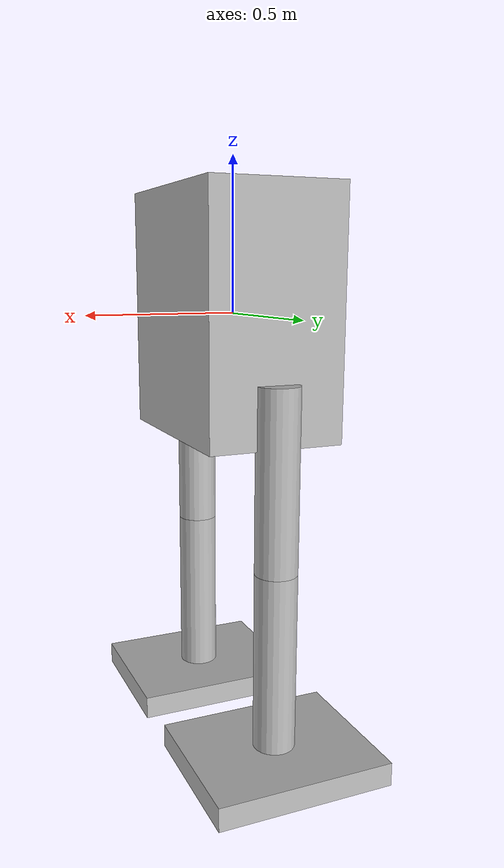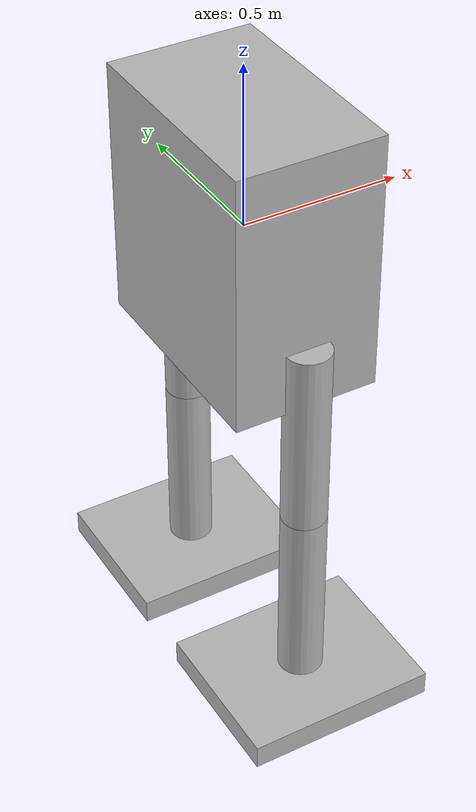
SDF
<sdf version='1.7'>
  <model name='bipedal_robot'>
    <link name='dummy'>
      <inertial>
        <pose>0 0 0 0 -0 0</pose>
        <mass>1.1</mass>
        <inertia>
          <ixx>0.1</ixx>
          <ixy>0</ixy>
          <ixz>0</ixz>
          <iyy>0.1</iyy>
          <iyz>0</iyz>
          <izz>0.1</izz>
        </inertia>
      </inertial>
      <collision name='dummy_fixed_joint_lump__base_link_collision'>
        <pose>0 0 0 0 -0 0</pose>
        <geometry>
          <box>
            <size>0.3 0.7 0.8</size>
          </box>
        </geometry>
        <surface>
          <contact>
            <ode>
              <max_vel>20</max_vel>
              <min_depth>0.01</min_depth>
            </ode>
          </contact>
          <friction>
            <ode>
              <mu>10000</mu>
              <mu2>10000</mu2>
            </ode>
          </friction>
        </surface>
      </collision>
      <visual name='dummy_fixed_joint_lump__base_link_visual'>
        <pose>0 0 0 0 -0 0</pose>
        <geometry>
          <box>
            <size>0.45 0.7 0.8</size>
          </box>
        </geometry>
      </visual>
    </link>
    <joint name='left_hip_joint1' type='revolute'>
      <pose relative_to='dummy'>0 0.35 -0.2 0 -0 0</pose>
      <parent>dummy</parent>
      <child>left_hip_link</child>
      <axis>
        <xyz>0 1 0</xyz>
        <limit>
          <lower>-1.57</lower>
          <upper>0.52</upper>
          <effort>50</effort>
          <velocity>10</velocity>
        </limit>
        <dynamics>
          <damping>0.3</damping>
          <friction>0.07</friction>
          <spring_reference>0</spring_reference>
          <spring_stiffness>0</spring_stiffness>
        </dynamics>
      </axis>
    </joint>
    <link name='left_hip_link'>
      <pose relative_to='left_hip_joint1'>0 0 0 0 -0 0</pose>
      <inertial>
        <pose>0 0 0 0 -0 0</pose>
        <mass>0.01</mass>
        <inertia>
          <ixx>0.1</ixx>
          <ixy>0</ixy>
          <ixz>0</ixz>
          <iyy>0.1</iyy>
          <iyz>0</iyz>
          <izz>0.1</izz>
        </inertia>
      </inertial>
    </link>
    <joint name='left_hip_joint2' type='revolute'>
      <pose relative_to='left_hip_link'>0 0 0 0 -0 0</pose>
      <parent>left_hip_link</parent>
      <child>left_thigh</child>
      <axis>
        <xyz>1 0 0</xyz>
        <limit>
          <lower>-0.26</lower>
          <upper>0.78</upper>
          <effort>50</effort>
          <velocity>10</velocity>
        </limit>
        <dynamics>
          <damping>0.3</damping>
          <friction>0.07</friction>
          <spring_reference>0</spring_reference>
          <spring_stiffness>0</spring_stiffness>
        </dynamics>
      </axis>
    </joint>
    <link name='left_thigh'>
      <pose relative_to='left_hip_joint2'>0 0 0 0 -0 0</pose>
      <inertial>
        <pose>0 0 0 0 -0 0</pose>
        <mass>1.9</mass>
        <inertia>
          <ixx>0.1</ixx>
          <ixy>0</ixy>
          <ixz>0</ixz>
          <iyy>0.1</iyy>
          <iyz>0</iyz>
          <izz>0.1</izz>
        </inertia>
      </inertial>
      <collision name='left_thigh_collision_collision'>
        <pose>0 0 -0.3 0 -0 0</pose>
        <geometry>
          <cylinder>
            <length>0.6</length>
            <radius>0.07</radius>
          </cylinder>
        </geometry>
        <surface>
          <contact>
            <ode>
              <max_vel>20</max_vel>
              <min_depth>0.01</min_depth>
            </ode>
          </contact>
          <friction>
            <ode>
              <mu>10000</mu>
              <mu2>10000</mu2>
            </ode>
          </friction>
        </surface>
      </collision>
      <visual name='left_thigh_visual'>
        <pose>0 0 -0.3 0 -0 0</pose>
        <geometry>
          <cylinder>
            <length>0.6</length>
            <radius>0.07</radius>
          </cylinder>
        </geometry>
      </visual>
    </link>
    <joint name='left_knee_joint' type='revolute'>
      <pose relative_to='left_thigh'>0 0 -0.6 0 -0 0</pose>
      <parent>left_thigh</parent>
      <child>left_shin</child>
      <axis>
        <xyz>0 1 0</xyz>
        <limit>
          <lower>-0.17</lower>
          <upper>1.57</upper>
          <effort>50</effort>
          <velocity>10</velocity>
        </limit>
        <dynamics>
          <damping>0.2</damping>
          <friction>0</friction>
          <spring_reference>0</spring_reference>
          <spring_stiffness>0</spring_stiffness>
        </dynamics>
      </axis>
    </joint>
    <link name='left_shin'>
      <pose relative_to='left_knee_joint'>0 0 0 0 -0 0</pose>
      <inertial>
        <pose>0 0 0 0 -0 0</pose>
        <mass>1.3</mass>
        <inertia>
          <ixx>0.1</ixx>
          <ixy>0</ixy>
          <ixz>0</ixz>
          <iyy>0.1</iyy>
          <iyz>0</iyz>
          <izz>0.1</izz>
        </inertia>
      </inertial>
      <collision name='left_shin_collision_collision'>
        <pose>0 0 -0.3 0 -0 0</pose>
        <geometry>
          <cylinder>
            <length>0.6</length>
            <radius>0.07</radius>
          </cylinder>
        </geometry>
        <surface>
          <contact>
            <ode>
              <max_vel>20</max_vel>
              <min_depth>0.01</min_depth>
            </ode>
          </contact>
          <friction>
            <ode>
              <mu>10000</mu>
              <mu2>10000</mu2>
            </ode>
          </friction>
        </surface>
      </collision>
      <visual name='left_shin_visual'>
        <pose>0 0 -0.3 0 -0 0</pose>
        <geometry>
          <cylinder>
            <length>0.6</length>
            <radius>0.07</radius>
          </cylinder>
        </geometry>
      </visual>
    </link>
    <joint name='left_ankle_joint1' type='revolute'>
      <pose relative_to='left_shin'>0 0 -0.6 0 -0 0</pose>
      <parent>left_shin</parent>
      <child>left_ankle_link</child>
      <axis>
        <xyz>0 1 0</xyz>
        <limit>
          <lower>-1.05</lower>
          <upper>0.52</upper>
          <effort>30</effort>
          <velocity>10</velocity>
        </limit>
        <dynamics>
          <damping>0</damping>
          <friction>0</friction>
          <spring_reference>0</spring_reference>
          <spring_stiffness>0</spring_stiffness>
        </dynamics>
      </axis>
    </joint>
    <link name='left_ankle_link'>
      <pose relative_to='left_ankle_joint1'>0 0 0 0 -0 0</pose>
      <inertial>
        <pose>0 0 0 0 -0 0</pose>
        <mass>0.01</mass>
        <inertia>
          <ixx>0.1</ixx>
          <ixy>0</ixy>
          <ixz>0</ixz>
          <iyy>0.1</iyy>
          <iyz>0</iyz>
          <izz>0.1</izz>
        </inertia>
      </inertial>
    </link>
    <joint name='left_ankle_joint2' type='revolute'>
      <pose relative_to='left_ankle_link'>0 0 0 0 -0 0</pose>
      <parent>left_ankle_link</parent>
      <child>left_foot</child>
      <axis>
        <xyz>1 0 0</xyz>
        <limit>
          <lower>-0.52</lower>
          <upper>0.52</upper>
          <effort>30</effort>
          <velocity>10</velocity>
        </limit>
        <dynamics>
          <damping>0</damping>
          <friction>0</friction>
          <spring_reference>0</spring_reference>
          <spring_stiffness>0</spring_stiffness>
        </dynamics>
      </axis>
    </joint>
    <link name='left_foot'>
      <pose relative_to='left_ankle_joint2'>0 0 0 0 -0 0</pose>
      <inertial>
        <pose>0 0 0 0 -0 0</pose>
        <mass>1.3</mass>
        <inertia>
          <ixx>0.1</ixx>
          <ixy>0</ixy>
          <ixz>0</ixz>
          <iyy>0.1</iyy>
          <iyz>0</iyz>
          <izz>0.1</izz>
        </inertia>
      </inertial>
      <collision name='left_foot_collision_collision'>
        <pose>0 0 -0.04 0 -0 0</pose>
        <geometry>
          <box>
            <size>0.6 0.5 0.08</size>
          </box>
        </geometry>
        <surface>
          <bounce>
            <restitution_coefficient>0.9</restitution_coefficient>
            <threshold>0</threshold>
          </bounce>
          <contact>
            <ode>
              <max_vel>20</max_vel>
              <min_depth>0.01</min_depth>
            </ode>
          </contact>
          <friction>
            <ode>
              <mu>10000</mu>
              <mu2>10000</mu2>
            </ode>
          </friction>
        </surface>
      </collision>
      <visual name='left_foot_visual'>
        <pose>0 0 -0.04 0 -0 0</pose>
        <geometry>
          <box>
            <size>0.6 0.5 0.08</size>
          </box>
        </geometry>
      </visual>
      <sensor name='left_foot_sensor' type='contact'>
        <always_on>1</always_on>
        <contact>
          <collision>left_foot_collision_collision</collision>
          <topic>__default_topic__</topic>
        </contact>
        <plugin name='gazebo_ros_bumper_plugin' filename='libgazebo_ros_bumper.so'>
          <bumperTopicName>left_foot_contact</bumperTopicName>
          <frameName>left_foot</frameName>
        </plugin>
      </sensor>
    </link>
    <joint name='right_hip_joint1' type='revolute'>
      <pose relative_to='dummy'>0 -0.35 -0.2 0 -0 0</pose>
      <parent>dummy</parent>
      <child>right_hip_link</child>
      <axis>
        <xyz>0 1 0</xyz>
        <limit>
          <lower>-1.57</lower>
          <upper>0.52</upper>
          <effort>50</effort>
          <velocity>10</velocity>
        </limit>
        <dynamics>
          <damping>0.3</damping>
          <friction>0.07</friction>
          <spring_reference>0</spring_reference>
          <spring_stiffness>0</spring_stiffness>
        </dynamics>
      </axis>
    </joint>
    <link name='right_hip_link'>
      <pose relative_to='right_hip_joint1'>0 0 0 0 -0 0</pose>
      <inertial>
        <pose>0 0 0 0 -0 0</pose>
        <mass>0.01</mass>
        <inertia>
          <ixx>0.1</ixx>
          <ixy>0</ixy>
          <ixz>0</ixz>
          <iyy>0.1</iyy>
          <iyz>0</iyz>
          <izz>0.1</izz>
        </inertia>
      </inertial>
    </link>
    <joint name='right_hip_joint2' type='revolute'>
      <pose relative_to='right_hip_link'>0 0 0 0 -0 0</pose>
      <parent>right_hip_link</parent>
      <child>right_thigh</child>
      <axis>
        <xyz>1 0 0</xyz>
        <limit>
          <lower>-0.78</lower>
          <upper>0.26</upper>
          <effort>50</effort>
          <velocity>10</velocity>
        </limit>
        <dynamics>
          <damping>0.3</damping>
          <friction>0.07</friction>
          <spring_reference>0</spring_reference>
          <spring_stiffness>0</spring_stiffness>
        </dynamics>
      </axis>
    </joint>
    <link name='right_thigh'>
      <pose relative_to='right_hip_joint2'>0 0 0 0 -0 0</pose>
      <inertial>
        <pose>0 0 0 0 -0 0</pose>
        <mass>1.9</mass>
        <inertia>
          <ixx>0.1</ixx>
          <ixy>0</ixy>
          <ixz>0</ixz>
          <iyy>0.1</iyy>
          <iyz>0</iyz>
          <izz>0.1</izz>
        </inertia>
      </inertial>
      <collision name='right_thigh_collision_collision'>
        <pose>0 0 -0.3 0 -0 0</pose>
        <geometry>
          <cylinder>
            <length>0.6</length>
            <radius>0.07</radius>
          </cylinder>
        </geometry>
        <surface>
          <contact>
            <ode>
              <max_vel>20</max_vel>
              <min_depth>0.01</min_depth>
            </ode>
          </contact>
          <friction>
            <ode>
              <mu>10000</mu>
              <mu2>10000</mu2>
            </ode>
          </friction>
        </surface>
      </collision>
      <visual name='right_thigh_visual'>
        <pose>0 0 -0.3 0 -0 0</pose>
        <geometry>
          <cylinder>
            <length>0.6</length>
            <radius>0.07</radius>
          </cylinder>
        </geometry>
      </visual>
    </link>
    <joint name='right_knee_joint' type='revolute'>
      <pose relative_to='right_thigh'>0 0 -0.6 0 -0 0</pose>
      <parent>right_thigh</parent>
      <child>right_shin</child>
      <axis>
        <xyz>0 1 0</xyz>
        <limit>
          <lower>-0.17</lower>
          <upper>1.57</upper>
          <effort>50</effort>
          <velocity>10</velocity>
        </limit>
        <dynamics>
          <damping>0.2</damping>
          <friction>0</friction>
          <spring_reference>0</spring_reference>
          <spring_stiffness>0</spring_stiffness>
        </dynamics>
      </axis>
    </joint>
    <link name='right_shin'>
      <pose relative_to='right_knee_joint'>0 0 0 0 -0 0</pose>
      <inertial>
        <pose>0 0 0 0 -0 0</pose>
        <mass>1.3</mass>
        <inertia>
          <ixx>0.1</ixx>
          <ixy>0</ixy>
          <ixz>0</ixz>
          <iyy>0.1</iyy>
          <iyz>0</iyz>
          <izz>0.1</izz>
        </inertia>
      </inertial>
      <collision name='right_shin_collision_collision'>
        <pose>0 0 -0.3 0 -0 0</pose>
        <geometry>
          <cylinder>
            <length>0.6</length>
            <radius>0.07</radius>
          </cylinder>
        </geometry>
        <surface>
          <contact>
            <ode>
              <max_vel>20</max_vel>
              <min_depth>0.01</min_depth>
            </ode>
          </contact>
          <friction>
            <ode>
              <mu>10000</mu>
              <mu2>10000</mu2>
            </ode>
          </friction>
        </surface>
      </collision>
      <visual name='right_shin_visual'>
        <pose>0 0 -0.3 0 -0 0</pose>
        <geometry>
          <cylinder>
            <length>0.6</length>
            <radius>0.07</radius>
          </cylinder>
        </geometry>
      </visual>
    </link>
    <joint name='right_ankle_joint1' type='revolute'>
      <pose relative_to='right_shin'>0 0 -0.6 0 -0 0</pose>
      <parent>right_shin</parent>
      <child>right_ankle_link</child>
      <axis>
        <xyz>0 1 0</xyz>
        <limit>
          <lower>-1.05</lower>
          <upper>0.52</upper>
          <effort>30</effort>
          <velocity>10</velocity>
        </limit>
        <dynamics>
          <damping>0</damping>
          <friction>0</friction>
          <spring_reference>0</spring_reference>
          <spring_stiffness>0</spring_stiffness>
        </dynamics>
      </axis>
    </joint>
    <link name='right_ankle_link'>
      <pose relative_to='right_ankle_joint1'>0 0 0 0 -0 0</pose>
      <inertial>
        <pose>0 0 0 0 -0 0</pose>
        <mass>0.01</mass>
        <inertia>
          <ixx>0.1</ixx>
          <ixy>0</ixy>
          <ixz>0</ixz>
          <iyy>0.1</iyy>
          <iyz>0</iyz>
          <izz>0.1</izz>
        </inertia>
      </inertial>
    </link>
    <joint name='right_ankle_joint2' type='revolute'>
      <pose relative_to='right_ankle_link'>0 0 0 0 -0 0</pose>
      <parent>right_ankle_link</parent>
      <child>right_foot</child>
      <axis>
        <xyz>1 0 0</xyz>
        <limit>
          <lower>-0.52</lower>
          <upper>0.52</upper>
          <effort>30</effort>
          <velocity>10</velocity>
        </limit>
        <dynamics>
          <damping>0</damping>
          <friction>0</friction>
          <spring_reference>0</spring_reference>
          <spring_stiffness>0</spring_stiffness>
        </dynamics>
      </axis>
    </joint>
    <link name='right_foot'>
      <pose relative_to='right_ankle_joint2'>0 0 0 0 -0 0</pose>
      <inertial>
        <pose>0 0 0 0 -0 0</pose>
        <mass>1.3</mass>
        <inertia>
          <ixx>0.1</ixx>
          <ixy>0</ixy>
          <ixz>0</ixz>
          <iyy>0.1</iyy>
          <iyz>0</iyz>
          <izz>0.1</izz>
        </inertia>
      </inertial>
      <collision name='right_foot_collision_collision'>
        <pose>0 0 -0.04 0 -0 0</pose>
        <geometry>
          <box>
            <size>0.6 0.5 0.08</size>
          </box>
        </geometry>
        <surface>
          <bounce>
            <restitution_coefficient>0.9</restitution_coefficient>
            <threshold>0</threshold>
          </bounce>
          <contact>
            <ode>
              <max_vel>20</max_vel>
              <min_depth>0.01</min_depth>
            </ode>
          </contact>
          <friction>
            <ode>
              <mu>10000</mu>
              <mu2>10000</mu2>
            </ode>
          </friction>
        </surface>
      </collision>
      <visual name='right_foot_visual'>
        <pose>0 0 -0.04 0 -0 0</pose>
        <geometry>
          <box>
            <size>0.6 0.5 0.08</size>
          </box>
        </geometry>
      </visual>
      <sensor name='right_foot_sensor' type='contact'>
        <always_on>1</always_on>
        <contact>
          <collision>right_foot_collision_collision</collision>
          <topic>__default_topic__</topic>
        </contact>
        <plugin name='gazebo_ros_bumper_plugin' filename='libgazebo_ros_bumper.so'>
          <bumperTopicName>right_foot_contact</bumperTopicName>
          <frameName>right_foot</frameName>
        </plugin>
      </sensor>
    </link>
    <static>0</static>
    <plugin name='gazebo_ros_control' filename='libgazebo_ros_control.so'/>
  </model>
</sdf>
